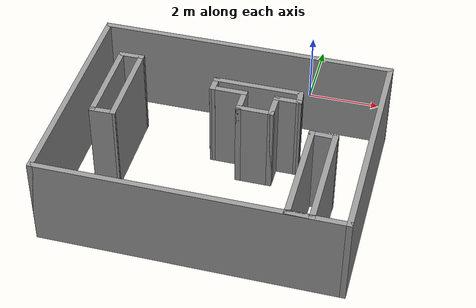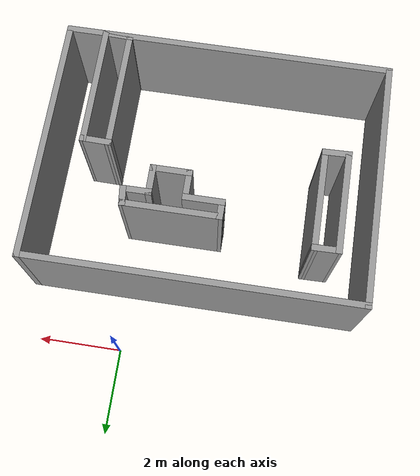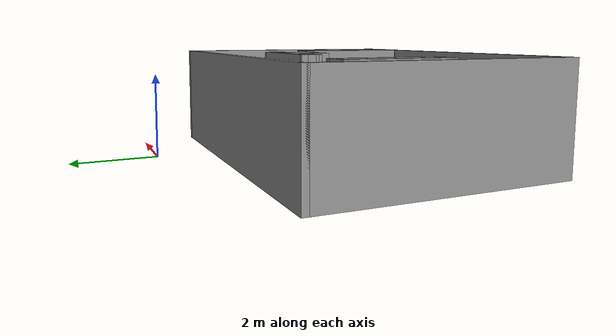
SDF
<?xml version='1.0'?>
<sdf version='1.6'>
  <model name='room1'>
    <pose frame=''>-1.575 -4.345 0 0 -0 0</pose>
    <link name='Wall_0'>
      <collision name='Wall_0_Collision'>
        <geometry>
          <box>
            <size>8 0.15 2.5</size>
          </box>
        </geometry>
        <pose frame=''>0 0 1.25 0 -0 0</pose>
      </collision>
      <visual name='Wall_0_Visual'>
        <pose frame=''>0 0 1.25 0 -0 0</pose>
        <geometry>
          <box>
            <size>8 0.15 2.5</size>
          </box>
        </geometry>
        <material>
          <script>
            <uri>file://media/materials/scripts/gazebo.material</uri>
            <name>Gazebo/Grey</name>
          </script>
          <ambient>1 1 1 1</ambient>
        </material>
        <meta>
          <layer>0</layer>
        </meta>
      </visual>
      <pose frame=''>0 2.925 0 0 -0 3.14159</pose>
    </link>
    <link name='Wall_1'>
      <collision name='Wall_1_Collision'>
        <geometry>
          <box>
            <size>0.15 0.15 2.5</size>
          </box>
        </geometry>
        <pose frame=''>0 0 1.25 0 -0 0</pose>
      </collision>
      <visual name='Wall_1_Visual'>
        <pose frame=''>0 0 1.25 0 -0 0</pose>
        <geometry>
          <box>
            <size>0.15 0.15 2.5</size>
          </box>
        </geometry>
        <material>
          <script>
            <uri>file://media/materials/scripts/gazebo.material</uri>
            <name>Gazebo/Grey</name>
          </script>
          <ambient>1 1 1 1</ambient>
        </material>
        <meta>
          <layer>0</layer>
        </meta>
      </visual>
      <pose frame=''>-3.925 2.925 0 0 -0 0</pose>
    </link>
    <link name='Wall_10'>
      <collision name='Wall_10_Collision'>
        <geometry>
          <box>
            <size>0.7 0.15 2.5</size>
          </box>
        </geometry>
        <pose frame=''>0 0 1.25 0 -0 0</pose>
      </collision>
      <visual name='Wall_10_Visual'>
        <pose frame=''>0 0 1.25 0 -0 0</pose>
        <geometry>
          <box>
            <size>0.7 0.15 2.5</size>
          </box>
        </geometry>
        <material>
          <script>
            <uri>file://media/materials/scripts/gazebo.material</uri>
            <name>Gazebo/Grey</name>
          </script>
          <ambient>1 1 1 1</ambient>
        </material>
        <meta>
          <layer>0</layer>
        </meta>
      </visual>
      <pose frame=''>-2.8965 -0.577585 0 0 -0 0.030729</pose>
    </link>
    <link name='Wall_11'>
      <collision name='Wall_11_Collision'>
        <geometry>
          <box>
            <size>2.5 0.15 2.5</size>
          </box>
        </geometry>
        <pose frame=''>0 0 1.25 0 -0 0</pose>
      </collision>
      <visual name='Wall_11_Visual'>
        <pose frame=''>0 0 1.25 0 -0 0</pose>
        <geometry>
          <box>
            <size>2.5 0.15 2.5</size>
          </box>
        </geometry>
        <material>
          <script>
            <uri>file://media/materials/scripts/gazebo.material</uri>
            <name>Gazebo/Grey</name>
          </script>
          <ambient>1 1 1 1</ambient>
        </material>
        <meta>
          <layer>0</layer>
        </meta>
      </visual>
      <pose frame=''>-2.6215 0.605869 0 0 -0 1.5708</pose>
    </link>
    <link name='Wall_12'>
      <collision name='Wall_12_Collision'>
        <geometry>
          <box>
            <size>0.700077 0.15 2.5</size>
          </box>
        </geometry>
        <pose frame=''>0 0 1.25 0 -0 0</pose>
      </collision>
      <visual name='Wall_12_Visual'>
        <pose frame=''>0 0 1.25 0 -0 0</pose>
        <geometry>
          <box>
            <size>0.700077 0.15 2.5</size>
          </box>
        </geometry>
        <material>
          <script>
            <uri>file://media/materials/scripts/gazebo.material</uri>
            <name>Gazebo/Grey</name>
          </script>
          <ambient>1 1 1 1</ambient>
        </material>
        <meta>
          <layer>0</layer>
        </meta>
      </visual>
      <pose frame=''>-2.8965 1.77618 0 0 -0 -3.12453</pose>
    </link>
    <link name='Wall_13'>
      <collision name='Wall_13_Collision'>
        <geometry>
          <box>
            <size>2.5 0.15 2.5</size>
          </box>
        </geometry>
        <pose frame=''>0 0 1.25 0 -0 0</pose>
      </collision>
      <visual name='Wall_13_Visual'>
        <pose frame=''>0 0 1.25 0 -0 0</pose>
        <geometry>
          <box>
            <size>2.5 0.15 2.5</size>
          </box>
        </geometry>
        <material>
          <script>
            <uri>file://media/materials/scripts/gazebo.material</uri>
            <name>Gazebo/Grey</name>
          </script>
          <ambient>1 1 1 1</ambient>
        </material>
        <meta>
          <layer>0</layer>
        </meta>
      </visual>
      <pose frame=''>-3.1715 0.596481 0 0 -0 -1.5708</pose>
    </link>
    <link name='Wall_16'>
      <collision name='Wall_16_Collision'>
        <geometry>
          <box>
            <size>0.763591 0.15 2.5</size>
          </box>
        </geometry>
        <pose frame=''>0 0 1.25 0 -0 0</pose>
      </collision>
      <visual name='Wall_16_Visual'>
        <pose frame=''>0 0 1.25 0 -0 0</pose>
        <geometry>
          <box>
            <size>0.763591 0.15 2.5</size>
          </box>
        </geometry>
        <material>
          <script>
            <uri>file://media/materials/scripts/gazebo.material</uri>
            <name>Gazebo/Grey</name>
          </script>
          <ambient>1 1 1 1</ambient>
        </material>
        <meta>
          <layer>0</layer>
        </meta>
      </visual>
      <pose frame=''>2.72704 -0.058379 0 0 -0 3.1203</pose>
    </link>
    <link name='Wall_17'>
      <collision name='Wall_17_Collision'>
        <geometry>
          <box>
            <size>3.00262 0.15 2.5</size>
          </box>
        </geometry>
        <pose frame=''>0 0 1.25 0 -0 0</pose>
      </collision>
      <visual name='Wall_17_Visual'>
        <pose frame=''>0 0 1.25 0 -0 0</pose>
        <geometry>
          <box>
            <size>3.00262 0.15 2.5</size>
          </box>
        </geometry>
        <material>
          <script>
            <uri>file://media/materials/scripts/gazebo.material</uri>
            <name>Gazebo/Grey</name>
          </script>
          <ambient>1 1 1 1</ambient>
        </material>
        <meta>
          <layer>0</layer>
        </meta>
      </visual>
      <pose frame=''>2.43065 -1.47816 0 0 -0 -1.56813</pose>
    </link>
    <link name='Wall_18'>
      <collision name='Wall_18_Collision'>
        <geometry>
          <box>
            <size>0.756945 0.15 2.5</size>
          </box>
        </geometry>
        <pose frame=''>0 0 1.25 0 -0 0</pose>
      </collision>
      <visual name='Wall_18_Visual'>
        <pose frame=''>0 0 1.25 0 -0 0</pose>
        <geometry>
          <box>
            <size>0.756945 0.15 2.5</size>
          </box>
        </geometry>
        <material>
          <script>
            <uri>file://media/materials/scripts/gazebo.material</uri>
            <name>Gazebo/Grey</name>
          </script>
          <ambient>1 1 1 1</ambient>
        </material>
        <meta>
          <layer>0</layer>
        </meta>
      </visual>
      <pose frame=''>2.73129 -2.91267 0 0 -0 -0.027057</pose>
    </link>
    <link name='Wall_19'>
      <collision name='Wall_19_Collision'>
        <geometry>
          <box>
            <size>3.0088 0.15 2.5</size>
          </box>
        </geometry>
        <pose frame=''>0 0 1.25 0 -0 0</pose>
      </collision>
      <visual name='Wall_19_Visual'>
        <pose frame=''>0 0 1.25 0 -0 0</pose>
        <geometry>
          <box>
            <size>3.0088 0.15 2.5</size>
          </box>
        </geometry>
        <material>
          <script>
            <uri>file://media/materials/scripts/gazebo.material</uri>
            <name>Gazebo/Grey</name>
          </script>
          <ambient>1 1 1 1</ambient>
        </material>
        <meta>
          <layer>0</layer>
        </meta>
      </visual>
      <pose frame=''>3.03093 -1.49431 0 0 -0 1.57339</pose>
    </link>
    <link name='Wall_2'>
      <collision name='Wall_2_Collision'>
        <geometry>
          <box>
            <size>6 0.15 2.5</size>
          </box>
        </geometry>
        <pose frame=''>0 0 1.25 0 -0 0</pose>
      </collision>
      <visual name='Wall_2_Visual'>
        <pose frame=''>0 0 1.25 0 -0 0</pose>
        <geometry>
          <box>
            <size>6 0.15 2.5</size>
          </box>
        </geometry>
        <material>
          <script>
            <uri>file://media/materials/scripts/gazebo.material</uri>
            <name>Gazebo/Grey</name>
          </script>
          <ambient>1 1 1 1</ambient>
        </material>
        <meta>
          <layer>0</layer>
        </meta>
      </visual>
      <pose frame=''>-3.925 0 0 0 -0 -1.5708</pose>
    </link>
    <link name='Wall_21'>
      <collision name='Wall_21_Collision'>
        <geometry>
          <box>
            <size>2.4 0.15 2.5</size>
          </box>
        </geometry>
        <pose frame=''>0 0 1.25 0 -0 0</pose>
      </collision>
      <visual name='Wall_21_Visual'>
        <pose frame=''>0 0 1.25 0 -0 0</pose>
        <geometry>
          <box>
            <size>2.4 0.15 2.5</size>
          </box>
        </geometry>
        <material>
          <script>
            <uri>file://media/materials/scripts/gazebo.material</uri>
            <name>Gazebo/Grey</name>
          </script>
          <ambient>1 1 1 1</ambient>
        </material>
        <meta>
          <layer>0</layer>
        </meta>
      </visual>
      <pose frame=''>0.702327 1.37528 0 0 -0 3.14159</pose>
    </link>
    <link name='Wall_22'>
      <collision name='Wall_22_Collision'>
        <geometry>
          <box>
            <size>0.50069 0.15 2.5</size>
          </box>
        </geometry>
        <pose frame=''>0 0 1.25 0 -0 0</pose>
      </collision>
      <visual name='Wall_22_Visual'>
        <pose frame=''>0 0 1.25 0 -0 0</pose>
        <geometry>
          <box>
            <size>0.50069 0.15 2.5</size>
          </box>
        </geometry>
        <material>
          <script>
            <uri>file://media/materials/scripts/gazebo.material</uri>
            <name>Gazebo/Grey</name>
          </script>
          <ambient>1 1 1 1</ambient>
        </material>
        <meta>
          <layer>0</layer>
        </meta>
      </visual>
      <pose frame=''>-0.422289 1.20028 0 0 -0 -1.58718</pose>
    </link>
    <link name='Wall_23'>
      <collision name='Wall_23_Collision'>
        <geometry>
          <box>
            <size>1 0.15 2.5</size>
          </box>
        </geometry>
        <pose frame=''>0 0 1.25 0 -0 0</pose>
      </collision>
      <visual name='Wall_23_Visual'>
        <pose frame=''>0 0 1.25 0 -0 0</pose>
        <geometry>
          <box>
            <size>1 0.15 2.5</size>
          </box>
        </geometry>
        <material>
          <script>
            <uri>file://media/materials/scripts/gazebo.material</uri>
            <name>Gazebo/Grey</name>
          </script>
          <ambient>1 1 1 1</ambient>
        </material>
        <meta>
          <layer>0</layer>
        </meta>
      </visual>
      <pose frame=''>-0.000156 1.02528 0 0 -0 0</pose>
    </link>
    <link name='Wall_24'>
      <collision name='Wall_24_Collision'>
        <geometry>
          <box>
            <size>0.75 0.15 2.5</size>
          </box>
        </geometry>
        <pose frame=''>0 0 1.25 0 -0 0</pose>
      </collision>
      <visual name='Wall_24_Visual'>
        <pose frame=''>0 0 1.25 0 -0 0</pose>
        <geometry>
          <box>
            <size>0.75 0.15 2.5</size>
          </box>
        </geometry>
        <material>
          <script>
            <uri>file://media/materials/scripts/gazebo.material</uri>
            <name>Gazebo/Grey</name>
          </script>
          <ambient>1 1 1 1</ambient>
        </material>
        <meta>
          <layer>0</layer>
        </meta>
      </visual>
      <pose frame=''>0.424844 0.725278 0 0 -0 -1.5708</pose>
    </link>
    <link name='Wall_25'>
      <collision name='Wall_25_Collision'>
        <geometry>
          <box>
            <size>1 0.15 2.5</size>
          </box>
        </geometry>
        <pose frame=''>0 0 1.25 0 -0 0</pose>
      </collision>
      <visual name='Wall_25_Visual'>
        <pose frame=''>0 0 1.25 0 -0 0</pose>
        <geometry>
          <box>
            <size>1 0.15 2.5</size>
          </box>
        </geometry>
        <material>
          <script>
            <uri>file://media/materials/scripts/gazebo.material</uri>
            <name>Gazebo/Grey</name>
          </script>
          <ambient>1 1 1 1</ambient>
        </material>
        <meta>
          <layer>0</layer>
        </meta>
      </visual>
      <pose frame=''>0.849844 0.425278 0 0 -0 0</pose>
    </link>
    <link name='Wall_3'>
      <collision name='Wall_3_Collision'>
        <geometry>
          <box>
            <size>8 0.15 2.5</size>
          </box>
        </geometry>
        <pose frame=''>0 0 1.25 0 -0 0</pose>
      </collision>
      <visual name='Wall_3_Visual'>
        <pose frame=''>0 0 1.25 0 -0 0</pose>
        <geometry>
          <box>
            <size>8 0.15 2.5</size>
          </box>
        </geometry>
        <material>
          <script>
            <uri>file://media/materials/scripts/gazebo.material</uri>
            <name>Gazebo/Grey</name>
          </script>
          <ambient>1 1 1 1</ambient>
        </material>
        <meta>
          <layer>0</layer>
        </meta>
      </visual>
      <pose frame=''>0 -2.925 0 0 -0 0</pose>
    </link>
    <link name='Wall_32'>
      <collision name='Wall_32_Collision'>
        <geometry>
          <box>
            <size>0.756501 0.15 2.5</size>
          </box>
        </geometry>
        <pose frame=''>0 0 1.25 0 -0 0</pose>
      </collision>
      <visual name='Wall_32_Visual'>
        <pose frame=''>0 0 1.25 0 -0 0</pose>
        <geometry>
          <box>
            <size>0.756501 0.15 2.5</size>
          </box>
        </geometry>
        <material>
          <script>
            <uri>file://media/materials/scripts/gazebo.material</uri>
            <name>Gazebo/Grey</name>
          </script>
          <ambient>1 1 1 1</ambient>
        </material>
        <meta>
          <layer>0</layer>
        </meta>
      </visual>
      <pose frame=''>1.27484 0.728528 0 0 -0 1.5708</pose>
    </link>
    <link name='Wall_33'>
      <collision name='Wall_33_Collision'>
        <geometry>
          <box>
            <size>0.743508 0.15 2.5</size>
          </box>
        </geometry>
        <pose frame=''>0 0 1.25 0 -0 0</pose>
      </collision>
      <visual name='Wall_33_Visual'>
        <pose frame=''>0 0 1.25 0 -0 0</pose>
        <geometry>
          <box>
            <size>0.743508 0.15 2.5</size>
          </box>
        </geometry>
        <material>
          <script>
            <uri>file://media/materials/scripts/gazebo.material</uri>
            <name>Gazebo/Grey</name>
          </script>
          <ambient>1 1 1 1</ambient>
        </material>
        <meta>
          <layer>0</layer>
        </meta>
      </visual>
      <pose frame=''>1.57159 1.03015 0 0 -0 0.005477</pose>
    </link>
    <link name='Wall_34'>
      <collision name='Wall_34_Collision'>
        <geometry>
          <box>
            <size>0.496339 0.15 2.5</size>
          </box>
        </geometry>
        <pose frame=''>0 0 1.25 0 -0 0</pose>
      </collision>
      <visual name='Wall_34_Visual'>
        <pose frame=''>0 0 1.25 0 -0 0</pose>
        <geometry>
          <box>
            <size>0.496339 0.15 2.5</size>
          </box>
        </geometry>
        <material>
          <script>
            <uri>file://media/materials/scripts/gazebo.material</uri>
            <name>Gazebo/Grey</name>
          </script>
          <ambient>1 1 1 1</ambient>
        </material>
        <meta>
          <layer>0</layer>
        </meta>
      </visual>
      <pose frame=''>1.85109 1.20353 0 0 -0 1.68964</pose>
    </link>
    <link name='Wall_4'>
      <collision name='Wall_4_Collision'>
        <geometry>
          <box>
            <size>6 0.15 2.5</size>
          </box>
        </geometry>
        <pose frame=''>0 0 1.25 0 -0 0</pose>
      </collision>
      <visual name='Wall_4_Visual'>
        <pose frame=''>0 0 1.25 0 -0 0</pose>
        <geometry>
          <box>
            <size>6 0.15 2.5</size>
          </box>
        </geometry>
        <material>
          <script>
            <uri>file://media/materials/scripts/gazebo.material</uri>
            <name>Gazebo/Grey</name>
          </script>
          <ambient>1 1 1 1</ambient>
        </material>
        <meta>
          <layer>0</layer>
        </meta>
      </visual>
      <pose frame=''>3.925 0 0 0 -0 1.5708</pose>
    </link>
    <static>1</static>
  </model>
</sdf>
